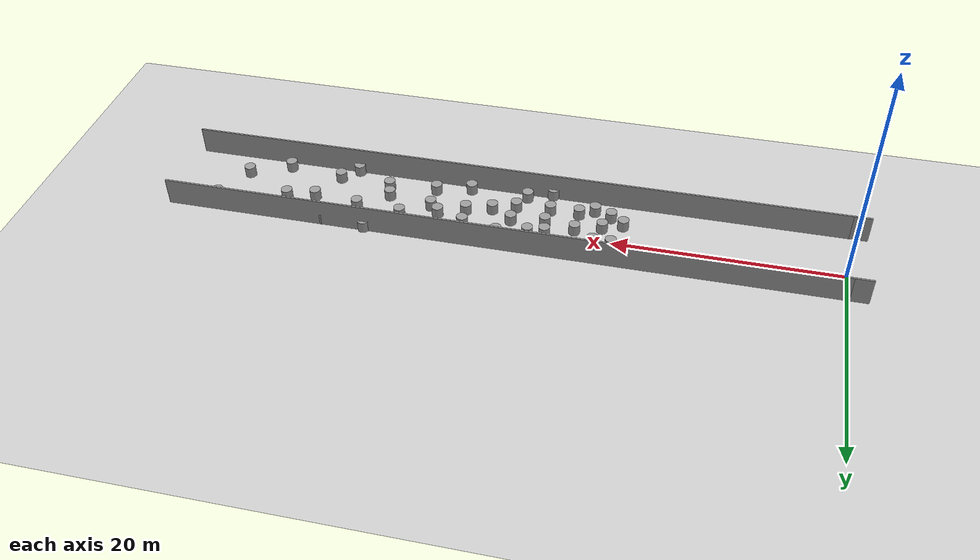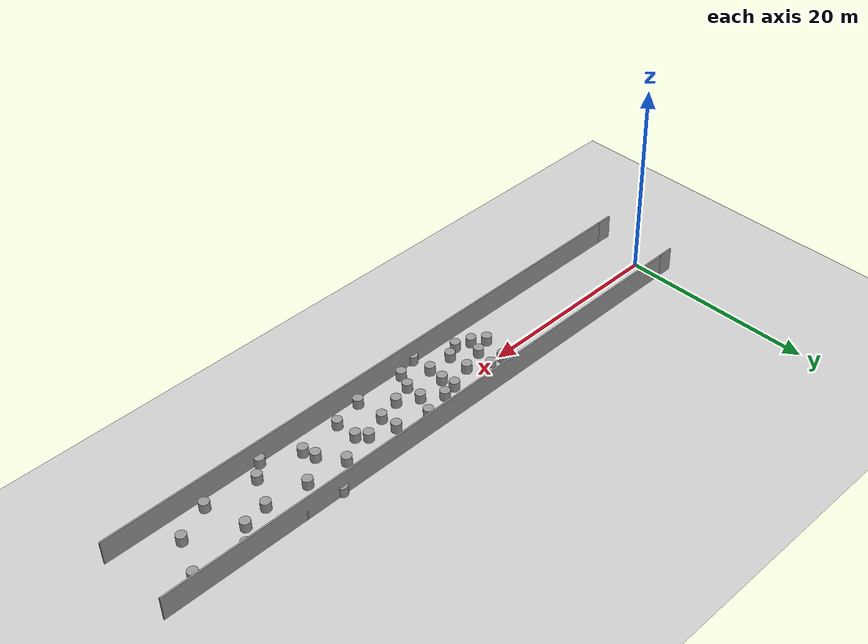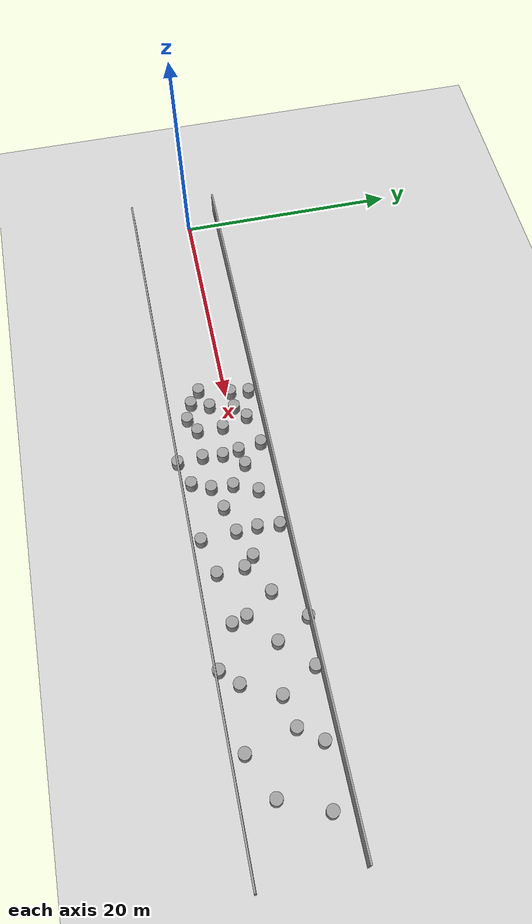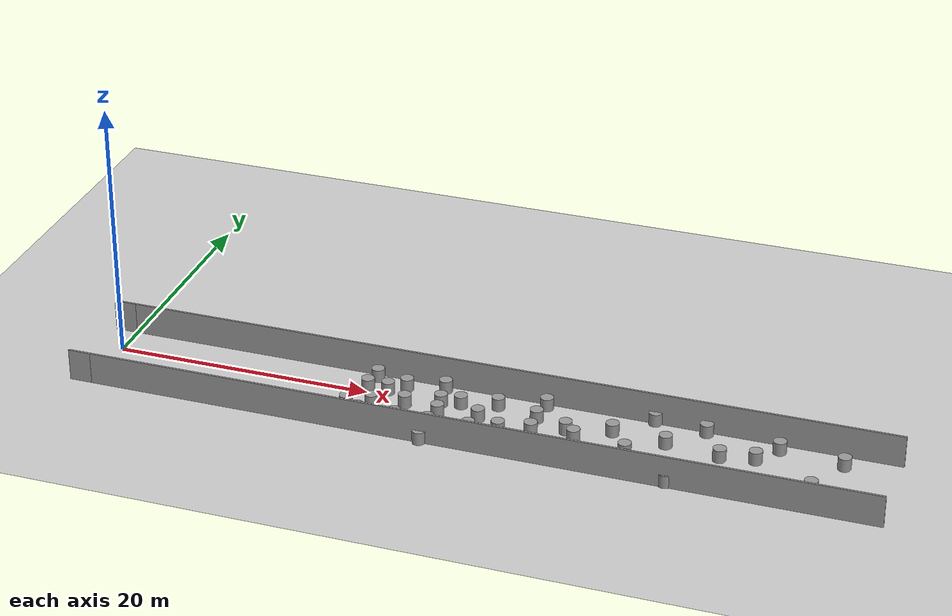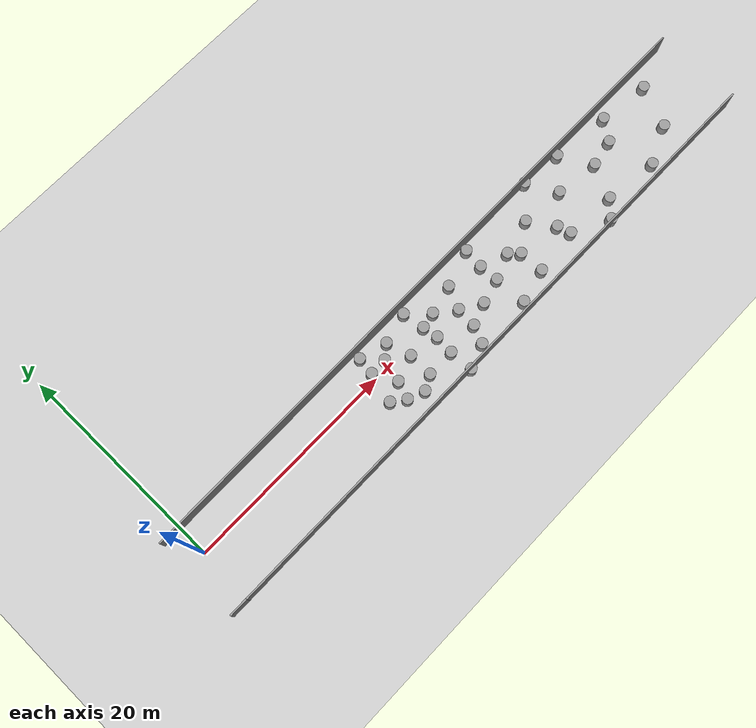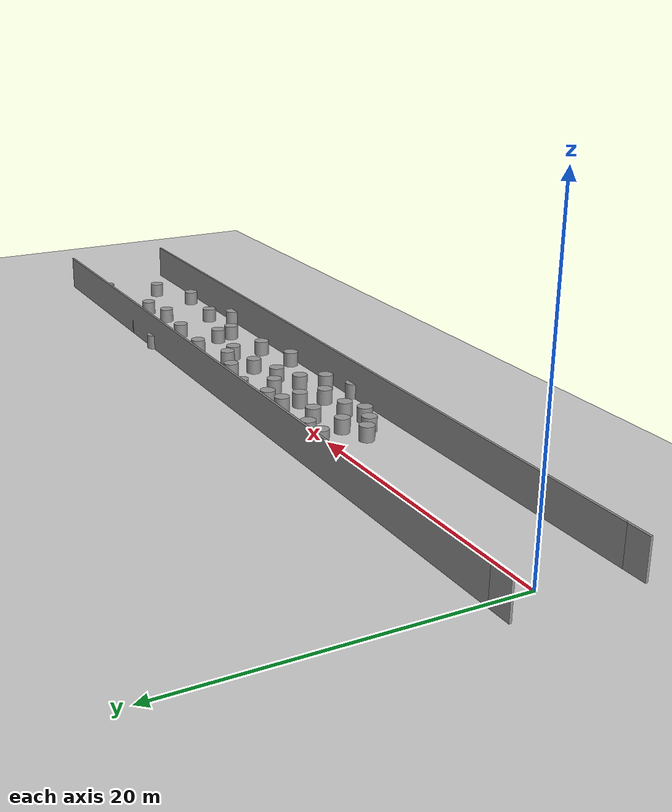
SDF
<sdf version="1.6">
 <world name="default">
  <model name="ground_plane">
   <static>1</static>
   <link name="link">
    <collision name="collision">
     <geometry><plane><normal>0 0 1</normal><size>100 100</size></plane></geometry>
     <surface>
      <contact><collide_bitmask>65535</collide_bitmask></contact>
      <friction><ode><mu>100</mu><mu2>50</mu2></ode></friction>
     </surface>
    </collision>
    <visual name="visual">
     <cast_shadows>0</cast_shadows>
     <geometry><plane><normal>0 0 1</normal><size>100 100</size></plane></geometry>
     <material>
      <script><uri>file://media/materials/scripts/gazebo.material</uri><name>Gazebo/Grey</name></script>
     </material>
    </visual>
   </link>
  </model>
  <model name="unit_cylinder_5">
   <pose>20.1456 2.07583 0.499997 3e-06 1e-06 -0</pose>
   <link name="link">
    <inertial>
     <mass>1</mass>
     <inertia><ixx>0.145833</ixx><ixy>0</ixy><ixz>0</ixz><iyy>0.145833</iyy><iyz>0</iyz><izz>0.125</izz></inertia>
    </inertial>
    <collision name="collision">
     <geometry><cylinder><radius>0.5</radius><length>1</length></cylinder></geometry>
    </collision>
    <visual name="visual">
     <geometry><cylinder><radius>0.5</radius><length>1</length></cylinder></geometry>
     <material>
      <script><name>Gazebo/Grey</name><uri>file://media/materials/scripts/gazebo.material</uri></script>
     </material>
    </visual>
   </link>
  </model>
  <model name="unit_cylinder_6">
   <pose>20.4307 -3.17791 0.499994 -4e-06 -3e-06 -0</pose>
   <link name="link">
    <inertial>
     <mass>1</mass>
     <inertia><ixx>0.145833</ixx><ixy>0</ixy><ixz>0</ixz><iyy>0.145833</iyy><iyz>0</iyz><izz>0.125</izz></inertia>
    </inertial>
    <collision name="collision">
     <geometry><cylinder><radius>0.5</radius><length>1</length></cylinder></geometry>
    </collision>
    <visual name="visual">
     <geometry><cylinder><radius>0.5</radius><length>1</length></cylinder></geometry>
     <material>
      <script><name>Gazebo/Grey</name><uri>file://media/materials/scripts/gazebo.material</uri></script>
     </material>
    </visual>
   </link>
  </model>
  <model name="unit_cylinder_7">
   <pose>25.5153 2.11295 0.499994 -4e-06 -3e-06 -0</pose>
   <link name="link">
    <inertial>
     <mass>1</mass>
     <inertia><ixx>0.145833</ixx><ixy>0</ixy><ixz>0</ixz><iyy>0.145833</iyy><iyz>0</iyz><izz>0.125</izz></inertia>
    </inertial>
    <collision name="collision">
     <geometry><cylinder><radius>0.5</radius><length>1</length></cylinder></geometry>
    </collision>
    <visual name="visual">
     <geometry><cylinder><radius>0.5</radius><length>1</length></cylinder></geometry>
     <material>
      <script><name>Gazebo/Grey</name><uri>file://media/materials/scripts/gazebo.material</uri></script>
     </material>
    </visual>
   </link>
  </model>
  <model name="unit_cylinder_8">
   <pose>26.0064 -5.24581 0.499997 3e-06 1e-06 -0</pose>
   <link name="link">
    <inertial>
     <mass>1</mass>
     <inertia><ixx>0.145833</ixx><ixy>0</ixy><ixz>0</ixz><iyy>0.145833</iyy><iyz>0</iyz><izz>0.125</izz></inertia>
    </inertial>
    <collision name="collision">
     <geometry><cylinder><radius>0.5</radius><length>1</length></cylinder></geometry>
    </collision>
    <visual name="visual">
     <geometry><cylinder><radius>0.5</radius><length>1</length></cylinder></geometry>
     <material>
      <script><name>Gazebo/Grey</name><uri>file://media/materials/scripts/gazebo.material</uri></script>
     </material>
    </visual>
   </link>
  </model>
  <model name="unit_cylinder_9">
   <pose>29.9752 1.02368 0.499996 4e-06 2e-06 -0</pose>
   <link name="link">
    <inertial>
     <mass>1</mass>
     <inertia><ixx>0.145833</ixx><ixy>0</ixy><ixz>0</ixz><iyy>0.145833</iyy><iyz>0</iyz><izz>0.125</izz></inertia>
    </inertial>
    <collision name="collision">
     <geometry><cylinder><radius>0.5</radius><length>1</length></cylinder></geometry>
    </collision>
    <visual name="visual">
     <geometry><cylinder><radius>0.5</radius><length>1</length></cylinder></geometry>
     <material>
      <script><name>Gazebo/Grey</name><uri>file://media/materials/scripts/gazebo.material</uri></script>
     </material>
    </visual>
   </link>
  </model>
  <model name="unit_cylinder_10">
   <pose>28.9403 -2.84074 0.499993 -4e-06 -2e-06 -0</pose>
   <link name="link">
    <inertial>
     <mass>1</mass>
     <inertia><ixx>0.145833</ixx><ixy>0</ixy><ixz>0</ixz><iyy>0.145833</iyy><iyz>0</iyz><izz>0.125</izz></inertia>
    </inertial>
    <collision name="collision">
     <geometry><cylinder><radius>0.5</radius><length>1</length></cylinder></geometry>
    </collision>
    <visual name="visual">
     <geometry><cylinder><radius>0.5</radius><length>1</length></cylinder></geometry>
     <material>
      <script><name>Gazebo/Grey</name><uri>file://media/materials/scripts/gazebo.material</uri></script>
     </material>
    </visual>
   </link>
  </model>
  <model name="unit_cylinder_11">
   <pose>38.9306 0.249725 0.499993 -4e-06 -2e-06 -0</pose>
   <link name="link">
    <inertial>
     <mass>1</mass>
     <inertia><ixx>0.145833</ixx><ixy>0</ixy><ixz>0</ixz><iyy>0.145833</iyy><iyz>0</iyz><izz>0.125</izz></inertia>
    </inertial>
    <collision name="collision">
     <geometry><cylinder><radius>0.5</radius><length>1</length></cylinder></geometry>
    </collision>
    <visual name="visual">
     <geometry><cylinder><radius>0.5</radius><length>1</length></cylinder></geometry>
     <material>
      <script><name>Gazebo/Grey</name><uri>file://media/materials/scripts/gazebo.material</uri></script>
     </material>
    </visual>
   </link>
  </model>
  <model name="unit_cylinder_12">
   <pose>23.3283 -0.825131 0.499996 4e-06 2e-06 -0</pose>
   <link name="link">
    <inertial>
     <mass>1</mass>
     <inertia><ixx>0.145833</ixx><ixy>0</ixy><ixz>0</ixz><iyy>0.145833</iyy><iyz>0</iyz><izz>0.125</izz></inertia>
    </inertial>
    <collision name="collision">
     <geometry><cylinder><radius>0.5</radius><length>1</length></cylinder></geometry>
    </collision>
    <visual name="visual">
     <geometry><cylinder><radius>0.5</radius><length>1</length></cylinder></geometry>
     <material>
      <script><name>Gazebo/Grey</name><uri>file://media/materials/scripts/gazebo.material</uri></script>
     </material>
    </visual>
   </link>
  </model>
  <model name="unit_cylinder_14">
   <pose>33.4337 -4.49053 0.499993 -4e-06 -2e-06 -0</pose>
   <link name="link">
    <inertial>
     <mass>1</mass>
     <inertia><ixx>0.145833</ixx><ixy>0</ixy><ixz>0</ixz><iyy>0.145833</iyy><iyz>0</iyz><izz>0.125</izz></inertia>
    </inertial>
    <collision name="collision">
     <geometry><cylinder><radius>0.5</radius><length>1</length></cylinder></geometry>
    </collision>
    <visual name="visual">
     <geometry><cylinder><radius>0.5</radius><length>1</length></cylinder></geometry>
     <material>
      <script><name>Gazebo/Grey</name><uri>file://media/materials/scripts/gazebo.material</uri></script>
     </material>
    </visual>
   </link>
  </model>
  <model name="unit_cylinder_15">
   <pose>33.2811 -1.5191 0.499993 -4e-06 -2e-06 -0</pose>
   <link name="link">
    <inertial>
     <mass>1</mass>
     <inertia><ixx>0.145833</ixx><ixy>0</ixy><ixz>0</ixz><iyy>0.145833</iyy><iyz>0</iyz><izz>0.125</izz></inertia>
    </inertial>
    <collision name="collision">
     <geometry><cylinder><radius>0.5</radius><length>1</length></cylinder></geometry>
    </collision>
    <visual name="visual">
     <geometry><cylinder><radius>0.5</radius><length>1</length></cylinder></geometry>
     <material>
      <script><name>Gazebo/Grey</name><uri>file://media/materials/scripts/gazebo.material</uri></script>
     </material>
    </visual>
   </link>
  </model>
  <model name="unit_cylinder_16">
   <pose>33.3825 2.12177 0.499994 3e-06 -3e-06 0</pose>
   <link name="link">
    <inertial>
     <mass>1</mass>
     <inertia><ixx>0.145833</ixx><ixy>0</ixy><ixz>0</ixz><iyy>0.145833</iyy><iyz>0</iyz><izz>0.125</izz></inertia>
    </inertial>
    <collision name="collision">
     <geometry><cylinder><radius>0.5</radius><length>1</length></cylinder></geometry>
    </collision>
    <visual name="visual">
     <geometry><cylinder><radius>0.5</radius><length>1</length></cylinder></geometry>
     <material>
      <script><name>Gazebo/Grey</name><uri>file://media/materials/scripts/gazebo.material</uri></script>
     </material>
    </visual>
   </link>
  </model>
  <model name="unit_cylinder_17">
   <pose>35.6441 -0.588373 0.499994 3e-06 -3e-06 0</pose>
   <link name="link">
    <inertial>
     <mass>1</mass>
     <inertia><ixx>0.145833</ixx><ixy>0</ixy><ixz>0</ixz><iyy>0.145833</iyy><iyz>0</iyz><izz>0.125</izz></inertia>
    </inertial>
    <collision name="collision">
     <geometry><cylinder><radius>0.5</radius><length>1</length></cylinder></geometry>
    </collision>
    <visual name="visual">
     <geometry><cylinder><radius>0.5</radius><length>1</length></cylinder></geometry>
     <material>
      <script><name>Gazebo/Grey</name><uri>file://media/materials/scripts/gazebo.material</uri></script>
     </material>
    </visual>
   </link>
  </model>
  <model name="unit_cylinder_18">
   <pose>40.8577 -3.2866 0.499993 -4e-06 -2e-06 -0</pose>
   <link name="link">
    <inertial>
     <mass>1</mass>
     <inertia><ixx>0.145833</ixx><ixy>0</ixy><ixz>0</ixz><iyy>0.145833</iyy><iyz>0</iyz><izz>0.125</izz></inertia>
    </inertial>
    <collision name="collision">
     <geometry><cylinder><radius>0.5</radius><length>1</length></cylinder></geometry>
    </collision>
    <visual name="visual">
     <geometry><cylinder><radius>0.5</radius><length>1</length></cylinder></geometry>
     <material>
      <script><name>Gazebo/Grey</name><uri>file://media/materials/scripts/gazebo.material</uri></script>
     </material>
    </visual>
   </link>
  </model>
  <model name="unit_cylinder_19">
   <pose>41.4999 2.67103 0.499993 -4e-06 -2e-06 -0</pose>
   <link name="link">
    <inertial>
     <mass>1</mass>
     <inertia><ixx>0.145833</ixx><ixy>0</ixy><ixz>0</ixz><iyy>0.145833</iyy><iyz>0</iyz><izz>0.125</izz></inertia>
    </inertial>
    <collision name="collision">
     <geometry><cylinder><radius>0.5</radius><length>1</length></cylinder></geometry>
    </collision>
    <visual name="visual">
     <geometry><cylinder><radius>0.5</radius><length>1</length></cylinder></geometry>
     <material>
      <script><name>Gazebo/Grey</name><uri>file://media/materials/scripts/gazebo.material</uri></script>
     </material>
    </visual>
   </link>
  </model>
  <model name="unit_cylinder_20">
   <pose>42.9995 -0.081271 0.499996 3e-06 1e-06 -0</pose>
   <link name="link">
    <inertial>
     <mass>1</mass>
     <inertia><ixx>0.145833</ixx><ixy>0</ixy><ixz>0</ixz><iyy>0.145833</iyy><iyz>0</iyz><izz>0.125</izz></inertia>
    </inertial>
    <collision name="collision">
     <geometry><cylinder><radius>0.5</radius><length>1</length></cylinder></geometry>
    </collision>
    <visual name="visual">
     <geometry><cylinder><radius>0.5</radius><length>1</length></cylinder></geometry>
     <material>
      <script><name>Gazebo/Grey</name><uri>file://media/materials/scripts/gazebo.material</uri></script>
     </material>
    </visual>
   </link>
  </model>
  <model name="unit_cylinder_21">
   <pose>36.5585 -3.73062 0.499996 3e-06 1e-06 -0</pose>
   <link name="link">
    <inertial>
     <mass>1</mass>
     <inertia><ixx>0.145833</ixx><ixy>0</ixy><ixz>0</ixz><iyy>0.145833</iyy><iyz>0</iyz><izz>0.125</izz></inertia>
    </inertial>
    <collision name="collision">
     <geometry><cylinder><radius>0.5</radius><length>1</length></cylinder></geometry>
    </collision>
    <visual name="visual">
     <geometry><cylinder><radius>0.5</radius><length>1</length></cylinder></geometry>
     <material>
      <script><name>Gazebo/Grey</name><uri>file://media/materials/scripts/gazebo.material</uri></script>
     </material>
    </visual>
   </link>
  </model>
  <model name="unit_cylinder_22">
   <pose>44.2549 -4.96705 0.499996 -3e-06 3e-06 0</pose>
   <link name="link">
    <inertial>
     <mass>1</mass>
     <inertia><ixx>0.145833</ixx><ixy>0</ixy><ixz>0</ixz><iyy>0.145833</iyy><iyz>0</iyz><izz>0.125</izz></inertia>
    </inertial>
    <collision name="collision">
     <geometry><cylinder><radius>0.5</radius><length>1</length></cylinder></geometry>
    </collision>
    <visual name="visual">
     <geometry><cylinder><radius>0.5</radius><length>1</length></cylinder></geometry>
     <material>
      <script><name>Gazebo/Grey</name><uri>file://media/materials/scripts/gazebo.material</uri></script>
     </material>
    </visual>
   </link>
  </model>
  <model name="unit_cylinder_23">
   <pose>47.0887 -0.584999 0.499992 -3e-06 2e-06 0</pose>
   <link name="link">
    <inertial>
     <mass>1</mass>
     <inertia><ixx>0.145833</ixx><ixy>0</ixy><ixz>0</ixz><iyy>0.145833</iyy><iyz>0</iyz><izz>0.125</izz></inertia>
    </inertial>
    <collision name="collision">
     <geometry><cylinder><radius>0.5</radius><length>1</length></cylinder></geometry>
    </collision>
    <visual name="visual">
     <geometry><cylinder><radius>0.5</radius><length>1</length></cylinder></geometry>
     <material>
      <script><name>Gazebo/Grey</name><uri>file://media/materials/scripts/gazebo.material</uri></script>
     </material>
    </visual>
   </link>
  </model>
  <model name="unit_cylinder_24">
   <pose>45.6178 -3.59792 0.499996 -3e-06 3e-06 0</pose>
   <link name="link">
    <inertial>
     <mass>1</mass>
     <inertia><ixx>0.145833</ixx><ixy>0</ixy><ixz>0</ixz><iyy>0.145833</iyy><iyz>0</iyz><izz>0.125</izz></inertia>
    </inertial>
    <collision name="collision">
     <geometry><cylinder><radius>0.5</radius><length>1</length></cylinder></geometry>
    </collision>
    <visual name="visual">
     <geometry><cylinder><radius>0.5</radius><length>1</length></cylinder></geometry>
     <material>
      <script><name>Gazebo/Grey</name><uri>file://media/materials/scripts/gazebo.material</uri></script>
     </material>
    </visual>
   </link>
  </model>
  <model name="unit_cylinder_25">
   <pose>45.4222 2.34595 0.499996 -3e-06 3e-06 0</pose>
   <link name="link">
    <inertial>
     <mass>1</mass>
     <inertia><ixx>0.145833</ixx><ixy>0</ixy><ixz>0</ixz><iyy>0.145833</iyy><iyz>0</iyz><izz>0.125</izz></inertia>
    </inertial>
    <collision name="collision">
     <geometry><cylinder><radius>0.5</radius><length>1</length></cylinder></geometry>
    </collision>
    <visual name="visual">
     <geometry><cylinder><radius>0.5</radius><length>1</length></cylinder></geometry>
     <material>
      <script><name>Gazebo/Grey</name><uri>file://media/materials/scripts/gazebo.material</uri></script>
     </material>
    </visual>
   </link>
  </model>
  <model name="unit_cylinder_26">
   <pose>50.9526 1.73898 0.499996 -3e-06 3e-06 0</pose>
   <link name="link">
    <inertial>
     <mass>1</mass>
     <inertia><ixx>0.145833</ixx><ixy>0</ixy><ixz>0</ixz><iyy>0.145833</iyy><iyz>0</iyz><izz>0.125</izz></inertia>
    </inertial>
    <collision name="collision">
     <geometry><cylinder><radius>0.5</radius><length>1</length></cylinder></geometry>
    </collision>
    <visual name="visual">
     <geometry><cylinder><radius>0.5</radius><length>1</length></cylinder></geometry>
     <material>
      <script><name>Gazebo/Grey</name><uri>file://media/materials/scripts/gazebo.material</uri></script>
     </material>
    </visual>
   </link>
  </model>
  <model name="unit_cylinder_27">
   <pose>50.6528 -4.19308 0.499996 -3e-06 3e-06 0</pose>
   <link name="link">
    <inertial>
     <mass>1</mass>
     <inertia><ixx>0.145833</ixx><ixy>0</ixy><ixz>0</ixz><iyy>0.145833</iyy><iyz>0</iyz><izz>0.125</izz></inertia>
    </inertial>
    <collision name="collision">
     <geometry><cylinder><radius>0.5</radius><length>1</length></cylinder></geometry>
    </collision>
    <visual name="visual">
     <geometry><cylinder><radius>0.5</radius><length>1</length></cylinder></geometry>
     <material>
      <script><name>Gazebo/Grey</name><uri>file://media/materials/scripts/gazebo.material</uri></script>
     </material>
    </visual>
   </link>
  </model>
  <model name="unit_cylinder_28">
   <pose>49.6096 -0.069506 0.499992 -3e-06 2e-06 0</pose>
   <link name="link">
    <inertial>
     <mass>1</mass>
     <inertia><ixx>0.145833</ixx><ixy>0</ixy><ixz>0</ixz><iyy>0.145833</iyy><iyz>0</iyz><izz>0.125</izz></inertia>
    </inertial>
    <collision name="collision">
     <geometry><cylinder><radius>0.5</radius><length>1</length></cylinder></geometry>
    </collision>
    <visual name="visual">
     <geometry><cylinder><radius>0.5</radius><length>1</length></cylinder></geometry>
     <material>
      <script><name>Gazebo/Grey</name><uri>file://media/materials/scripts/gazebo.material</uri></script>
     </material>
    </visual>
   </link>
  </model>
  <model name="unit_cylinder_29">
   <pose>55.7679 1.16425 0.499996 -3e-06 3e-06 0</pose>
   <link name="link">
    <inertial>
     <mass>1</mass>
     <inertia><ixx>0.145833</ixx><ixy>0</ixy><ixz>0</ixz><iyy>0.145833</iyy><iyz>0</iyz><izz>0.125</izz></inertia>
    </inertial>
    <collision name="collision">
     <geometry><cylinder><radius>0.5</radius><length>1</length></cylinder></geometry>
    </collision>
    <visual name="visual">
     <geometry><cylinder><radius>0.5</radius><length>1</length></cylinder></geometry>
     <material>
      <script><name>Gazebo/Grey</name><uri>file://media/materials/scripts/gazebo.material</uri></script>
     </material>
    </visual>
   </link>
  </model>
  <model name="unit_cylinder_30">
   <pose>54.1497 -2.57741 0.499992 -3e-06 2e-06 0</pose>
   <link name="link">
    <inertial>
     <mass>1</mass>
     <inertia><ixx>0.145833</ixx><ixy>0</ixy><ixz>0</ixz><iyy>0.145833</iyy><iyz>0</iyz><izz>0.125</izz></inertia>
    </inertial>
    <collision name="collision">
     <geometry><cylinder><radius>0.5</radius><length>1</length></cylinder></geometry>
    </collision>
    <visual name="visual">
     <geometry><cylinder><radius>0.5</radius><length>1</length></cylinder></geometry>
     <material>
      <script><name>Gazebo/Grey</name><uri>file://media/materials/scripts/gazebo.material</uri></script>
     </material>
    </visual>
   </link>
  </model>
  <model name="wall_up02">
   <pose>29.0122 -5.2307 0 0 -0 0</pose>
   <link name="Wall_0">
    <collision name="Wall_0_Collision">
     <geometry><box><size>60 0.15 2.5</size></box></geometry>
     <pose>0 0 1.25 0 -0 0</pose>
    </collision>
    <visual name="Wall_0_Visual">
     <pose>0 0 1.25 0 -0 0</pose>
     <geometry><box><size>60 0.15 2.5</size></box></geometry>
     <material>
      <script><uri>file://media/materials/scripts/gazebo.material</uri><name>Gazebo/Grey</name></script>
      <ambient>1 1 1 1</ambient>
     </material>
     <meta><layer>0</layer></meta>
    </visual>
    <pose>0.799999 0 0 0 -0 3.14159</pose>
   </link>
   <link name="Wall_1">
    <collision name="Wall_1_Collision">
     <geometry><box><size>1.75 0.15 2.5</size></box></geometry>
     <pose>0 0 1.25 0 -0 0</pose>
    </collision>
    <visual name="Wall_1_Visual">
     <pose>0 0 1.25 0 -0 0</pose>
     <geometry><box><size>1.75 0.15 2.5</size></box></geometry>
     <material>
      <script><uri>file://media/materials/scripts/gazebo.material</uri><name>Gazebo/Grey</name></script>
      <ambient>0 0 0 1</ambient>
     </material>
     <meta><layer>0</layer></meta>
    </visual>
    <pose>-29.925 0 0 0 -0 3.14159</pose>
   </link>
   <static>1</static>
  </model>
  <model name="wall_up02_0">
   <pose>28.975 2.76123 0 0 -0 0</pose>
   <link name="Wall_0">
    <collision name="Wall_0_Collision">
     <geometry><box><size>60 0.15 2.5</size></box></geometry>
     <pose>0 0 1.25 0 -0 0</pose>
    </collision>
    <visual name="Wall_0_Visual">
     <pose>0 0 1.25 0 -0 0</pose>
     <geometry><box><size>60 0.15 2.5</size></box></geometry>
     <material>
      <script><uri>file://media/materials/scripts/gazebo.material</uri><name>Gazebo/Grey</name></script>
      <ambient>1 1 1 1</ambient>
     </material>
     <meta><layer>0</layer></meta>
    </visual>
    <pose>0.799999 0 0 0 -0 3.14159</pose>
   </link>
   <link name="Wall_1">
    <collision name="Wall_1_Collision">
     <geometry><box><size>1.75 0.15 2.5</size></box></geometry>
     <pose>0 0 1.25 0 -0 0</pose>
    </collision>
    <visual name="Wall_1_Visual">
     <pose>0 0 1.25 0 -0 0</pose>
     <geometry><box><size>1.75 0.15 2.5</size></box></geometry>
     <material>
      <script><uri>file://media/materials/scripts/gazebo.material</uri><name>Gazebo/Grey</name></script>
      <ambient>0 0 0 1</ambient>
     </material>
     <meta><layer>0</layer></meta>
    </visual>
    <pose>-29.925 0 0 0 -0 3.14159</pose>
   </link>
   <static>1</static>
  </model>
  <model name="unit_cylinder_43">
   <pose>19.9313 0.472077 0.499998 3e-06 -3e-06 0</pose>
   <link name="link">
    <inertial>
     <mass>1</mass>
     <inertia><ixx>0.145833</ixx><ixy>0</ixy><ixz>0</ixz><iyy>0.145833</iyy><iyz>0</iyz><izz>0.125</izz></inertia>
    </inertial>
    <collision name="collision">
     <geometry><cylinder><radius>0.5</radius><length>1</length></cylinder></geometry>
    </collision>
    <visual name="visual">
     <geometry><cylinder><radius>0.5</radius><length>1</length></cylinder></geometry>
     <material>
      <script><name>Gazebo/Grey</name><uri>file://media/materials/scripts/gazebo.material</uri></script>
     </material>
    </visual>
   </link>
  </model>
  <model name="unit_cylinder_44">
   <pose>23.2838 -3.07009 0.499998 3e-06 -3e-06 0</pose>
   <link name="link">
    <inertial>
     <mass>1</mass>
     <inertia><ixx>0.145833</ixx><ixy>0</ixy><ixz>0</ixz><iyy>0.145833</iyy><iyz>0</iyz><izz>0.125</izz></inertia>
    </inertial>
    <collision name="collision">
     <geometry><cylinder><radius>0.5</radius><length>1</length></cylinder></geometry>
    </collision>
    <visual name="visual">
     <geometry><cylinder><radius>0.5</radius><length>1</length></cylinder></geometry>
     <material>
      <script><name>Gazebo/Grey</name><uri>file://media/materials/scripts/gazebo.material</uri></script>
     </material>
    </visual>
   </link>
  </model>
  <model name="unit_cylinder_45">
   <pose>25.8259 0.093134 0.499998 3e-06 -3e-06 0</pose>
   <link name="link">
    <inertial>
     <mass>1</mass>
     <inertia><ixx>0.145833</ixx><ixy>0</ixy><ixz>0</ixz><iyy>0.145833</iyy><iyz>0</iyz><izz>0.125</izz></inertia>
    </inertial>
    <collision name="collision">
     <geometry><cylinder><radius>0.5</radius><length>1</length></cylinder></geometry>
    </collision>
    <visual name="visual">
     <geometry><cylinder><radius>0.5</radius><length>1</length></cylinder></geometry>
     <material>
      <script><name>Gazebo/Grey</name><uri>file://media/materials/scripts/gazebo.material</uri></script>
     </material>
    </visual>
   </link>
  </model>
  <model name="unit_cylinder_46">
   <pose>22.6914 1.41393 0.499998 3e-06 -3e-06 0</pose>
   <link name="link">
    <inertial>
     <mass>1</mass>
     <inertia><ixx>0.145833</ixx><ixy>0</ixy><ixz>0</ixz><iyy>0.145833</iyy><iyz>0</iyz><izz>0.125</izz></inertia>
    </inertial>
    <collision name="collision">
     <geometry><cylinder><radius>0.5</radius><length>1</length></cylinder></geometry>
    </collision>
    <visual name="visual">
     <geometry><cylinder><radius>0.5</radius><length>1</length></cylinder></geometry>
     <material>
      <script><name>Gazebo/Grey</name><uri>file://media/materials/scripts/gazebo.material</uri></script>
     </material>
    </visual>
   </link>
  </model>
  <model name="unit_cylinder_47">
   <pose>25.8749 -3.05958 0.499998 3e-06 -3e-06 0</pose>
   <link name="link">
    <inertial>
     <mass>1</mass>
     <inertia><ixx>0.145833</ixx><ixy>0</ixy><ixz>0</ixz><iyy>0.145833</iyy><iyz>0</iyz><izz>0.125</izz></inertia>
    </inertial>
    <collision name="collision">
     <geometry><cylinder><radius>0.5</radius><length>1</length></cylinder></geometry>
    </collision>
    <visual name="visual">
     <geometry><cylinder><radius>0.5</radius><length>1</length></cylinder></geometry>
     <material>
      <script><name>Gazebo/Grey</name><uri>file://media/materials/scripts/gazebo.material</uri></script>
     </material>
    </visual>
   </link>
  </model>
  <model name="unit_cylinder_48">
   <pose>29.0664 -0.981869 0.499998 3e-06 -3e-06 0</pose>
   <link name="link">
    <inertial>
     <mass>1</mass>
     <inertia><ixx>0.145833</ixx><ixy>0</ixy><ixz>0</ixz><iyy>0.145833</iyy><iyz>0</iyz><izz>0.125</izz></inertia>
    </inertial>
    <collision name="collision">
     <geometry><cylinder><radius>0.5</radius><length>1</length></cylinder></geometry>
    </collision>
    <visual name="visual">
     <geometry><cylinder><radius>0.5</radius><length>1</length></cylinder></geometry>
     <material>
      <script><name>Gazebo/Grey</name><uri>file://media/materials/scripts/gazebo.material</uri></script>
     </material>
    </visual>
   </link>
  </model>
  <model name="unit_cylinder_49">
   <pose>33.1767 0.268356 0.499998 3e-06 -3e-06 0</pose>
   <link name="link">
    <inertial>
     <mass>1</mass>
     <inertia><ixx>0.145833</ixx><ixy>0</ixy><ixz>0</ixz><iyy>0.145833</iyy><iyz>0</iyz><izz>0.125</izz></inertia>
    </inertial>
    <collision name="collision">
     <geometry><cylinder><radius>0.5</radius><length>1</length></cylinder></geometry>
    </collision>
    <visual name="visual">
     <geometry><cylinder><radius>0.5</radius><length>1</length></cylinder></geometry>
     <material>
      <script><name>Gazebo/Grey</name><uri>file://media/materials/scripts/gazebo.material</uri></script>
     </material>
    </visual>
   </link>
  </model>
  <model name="unit_cylinder_50">
   <pose>30.9769 -2.13298 0.499998 3e-06 -3e-06 0</pose>
   <link name="link">
    <inertial>
     <mass>1</mass>
     <inertia><ixx>0.145833</ixx><ixy>0</ixy><ixz>0</ixz><iyy>0.145833</iyy><iyz>0</iyz><izz>0.125</izz></inertia>
    </inertial>
    <collision name="collision">
     <geometry><cylinder><radius>0.5</radius><length>1</length></cylinder></geometry>
    </collision>
    <visual name="visual">
     <geometry><cylinder><radius>0.5</radius><length>1</length></cylinder></geometry>
     <material>
      <script><name>Gazebo/Grey</name><uri>file://media/materials/scripts/gazebo.material</uri></script>
     </material>
    </visual>
   </link>
  </model>
  <model name="unit_cylinder_51">
   <pose>40.4815 -2.04936 0.499998 3e-06 -3e-06 0</pose>
   <link name="link">
    <inertial>
     <mass>1</mass>
     <inertia><ixx>0.145833</ixx><ixy>0</ixy><ixz>0</ixz><iyy>0.145833</iyy><iyz>0</iyz><izz>0.125</izz></inertia>
    </inertial>
    <collision name="collision">
     <geometry><cylinder><radius>0.5</radius><length>1</length></cylinder></geometry>
    </collision>
    <visual name="visual">
     <geometry><cylinder><radius>0.5</radius><length>1</length></cylinder></geometry>
     <material>
      <script><name>Gazebo/Grey</name><uri>file://media/materials/scripts/gazebo.material</uri></script>
     </material>
    </visual>
   </link>
  </model>
  <model name="unit_cylinder_52">
   <pose>36.4819 -1.43798 0.499998 3e-06 -3e-06 0</pose>
   <link name="link">
    <inertial>
     <mass>1</mass>
     <inertia><ixx>0.145833</ixx><ixy>0</ixy><ixz>0</ixz><iyy>0.145833</iyy><iyz>0</iyz><izz>0.125</izz></inertia>
    </inertial>
    <collision name="collision">
     <geometry><cylinder><radius>0.5</radius><length>1</length></cylinder></geometry>
    </collision>
    <visual name="visual">
     <geometry><cylinder><radius>0.5</radius><length>1</length></cylinder></geometry>
     <material>
      <script><name>Gazebo/Grey</name><uri>file://media/materials/scripts/gazebo.material</uri></script>
     </material>
    </visual>
   </link>
  </model>
  <model name="unit_cylinder_61">
   <pose>20.9963 -1.59357 0.499993 -3e-06 -3e-06 0</pose>
   <link name="link">
    <inertial>
     <mass>1</mass>
     <inertia><ixx>0.145833</ixx><ixy>0</ixy><ixz>0</ixz><iyy>0.145833</iyy><iyz>0</iyz><izz>0.125</izz></inertia>
    </inertial>
    <collision name="collision">
     <geometry><cylinder><radius>0.5</radius><length>1</length></cylinder></geometry>
    </collision>
    <visual name="visual">
     <geometry><cylinder><radius>0.5</radius><length>1</length></cylinder></geometry>
     <material>
      <script><name>Gazebo/Grey</name><uri>file://media/materials/scripts/gazebo.material</uri></script>
     </material>
    </visual>
   </link>
  </model>
  <model name="unit_cylinder_63">
   <pose>26.0417 -1.3217 0.499997 3e-06 3e-06 0</pose>
   <link name="link">
    <inertial>
     <mass>1</mass>
     <inertia><ixx>0.145833</ixx><ixy>0</ixy><ixz>0</ixz><iyy>0.145833</iyy><iyz>0</iyz><izz>0.125</izz></inertia>
    </inertial>
    <collision name="collision">
     <geometry><cylinder><radius>0.5</radius><length>1</length></cylinder></geometry>
    </collision>
    <visual name="visual">
     <geometry><cylinder><radius>0.5</radius><length>1</length></cylinder></geometry>
     <material>
      <script><name>Gazebo/Grey</name><uri>file://media/materials/scripts/gazebo.material</uri></script>
     </material>
    </visual>
   </link>
  </model>
  <model name="unit_cylinder_64">
   <pose>21.5243 0.502367 0.499997 3e-06 4e-06 -0</pose>
   <link name="link">
    <inertial>
     <mass>1</mass>
     <inertia><ixx>0.145833</ixx><ixy>0</ixy><ixz>0</ixz><iyy>0.145833</iyy><iyz>0</iyz><izz>0.125</izz></inertia>
    </inertial>
    <collision name="collision">
     <geometry><cylinder><radius>0.5</radius><length>1</length></cylinder></geometry>
    </collision>
    <visual name="visual">
     <geometry><cylinder><radius>0.5</radius><length>1</length></cylinder></geometry>
     <material>
      <script><name>Gazebo/Grey</name><uri>file://media/materials/scripts/gazebo.material</uri></script>
     </material>
    </visual>
   </link>
  </model>
  <model name="unit_cylinder_74">
   <pose>19.2347 -2.29896 0.499997 3e-06 4e-06 -0</pose>
   <link name="link">
    <inertial>
     <mass>1</mass>
     <inertia><ixx>0.145833</ixx><ixy>0</ixy><ixz>0</ixz><iyy>0.145833</iyy><iyz>0</iyz><izz>0.125</izz></inertia>
    </inertial>
    <collision name="collision">
     <geometry><cylinder><radius>0.5</radius><length>1</length></cylinder></geometry>
    </collision>
    <visual name="visual">
     <geometry><cylinder><radius>0.5</radius><length>1</length></cylinder></geometry>
     <material>
      <script><name>Gazebo/Grey</name><uri>file://media/materials/scripts/gazebo.material</uri></script>
     </material>
    </visual>
   </link>
  </model>
  <model name="unit_cylinder_75">
   <pose>21.9498 -3.75428 0.499993 -3e-06 -4e-06 -0</pose>
   <link name="link">
    <inertial>
     <mass>1</mass>
     <inertia><ixx>0.145833</ixx><ixy>0</ixy><ixz>0</ixz><iyy>0.145833</iyy><iyz>0</iyz><izz>0.125</izz></inertia>
    </inertial>
    <collision name="collision">
     <geometry><cylinder><radius>0.5</radius><length>1</length></cylinder></geometry>
    </collision>
    <visual name="visual">
     <geometry><cylinder><radius>0.5</radius><length>1</length></cylinder></geometry>
     <material>
      <script><name>Gazebo/Grey</name><uri>file://media/materials/scripts/gazebo.material</uri></script>
     </material>
    </visual>
   </link>
  </model>
  <model name="unit_cylinder_77">
   <pose>28.2236 -4.43045 0.499997 3e-06 4e-06 -0</pose>
   <link name="link">
    <inertial>
     <mass>1</mass>
     <inertia><ixx>0.145833</ixx><ixy>0</ixy><ixz>0</ixz><iyy>0.145833</iyy><iyz>0</iyz><izz>0.125</izz></inertia>
    </inertial>
    <collision name="collision">
     <geometry><cylinder><radius>0.5</radius><length>1</length></cylinder></geometry>
    </collision>
    <visual name="visual">
     <geometry><cylinder><radius>0.5</radius><length>1</length></cylinder></geometry>
     <material>
      <script><name>Gazebo/Grey</name><uri>file://media/materials/scripts/gazebo.material</uri></script>
     </material>
    </visual>
   </link>
  </model>
  <model name="unit_cylinder_78">
   <pose>27.2975 0.383249 0.499997 3e-06 4e-06 -0</pose>
   <link name="link">
    <inertial>
     <mass>1</mass>
     <inertia><ixx>0.145833</ixx><ixy>0</ixy><ixz>0</ixz><iyy>0.145833</iyy><iyz>0</iyz><izz>0.125</izz></inertia>
    </inertial>
    <collision name="collision">
     <geometry><cylinder><radius>0.5</radius><length>1</length></cylinder></geometry>
    </collision>
    <visual name="visual">
     <geometry><cylinder><radius>0.5</radius><length>1</length></cylinder></geometry>
     <material>
      <script><name>Gazebo/Grey</name><uri>file://media/materials/scripts/gazebo.material</uri></script>
     </material>
    </visual>
   </link>
  </model>
 </world>
</sdf>
